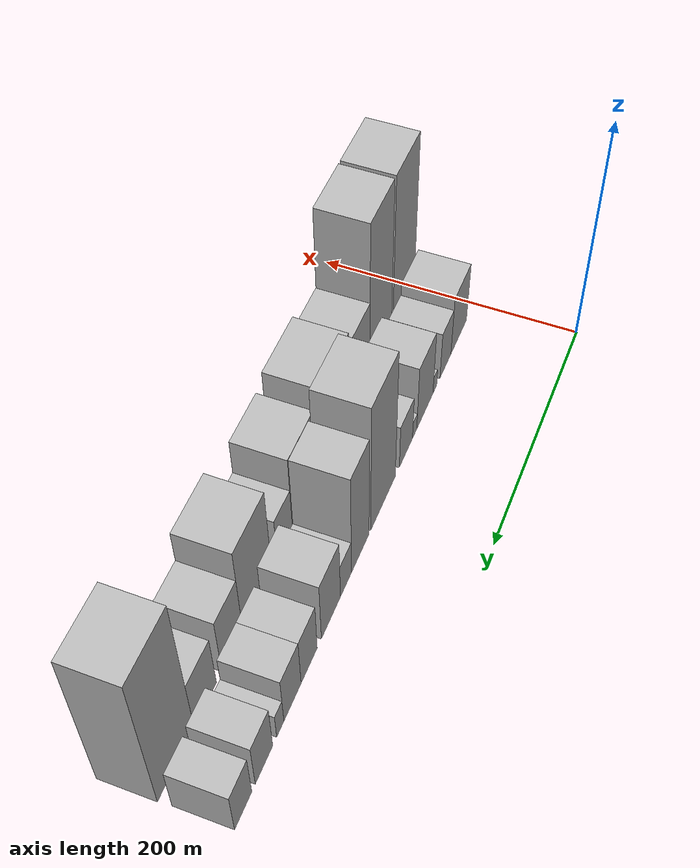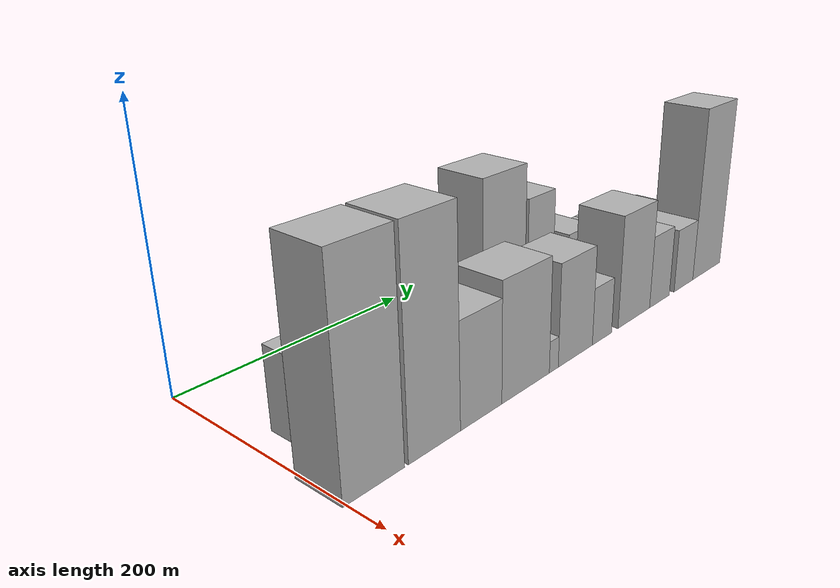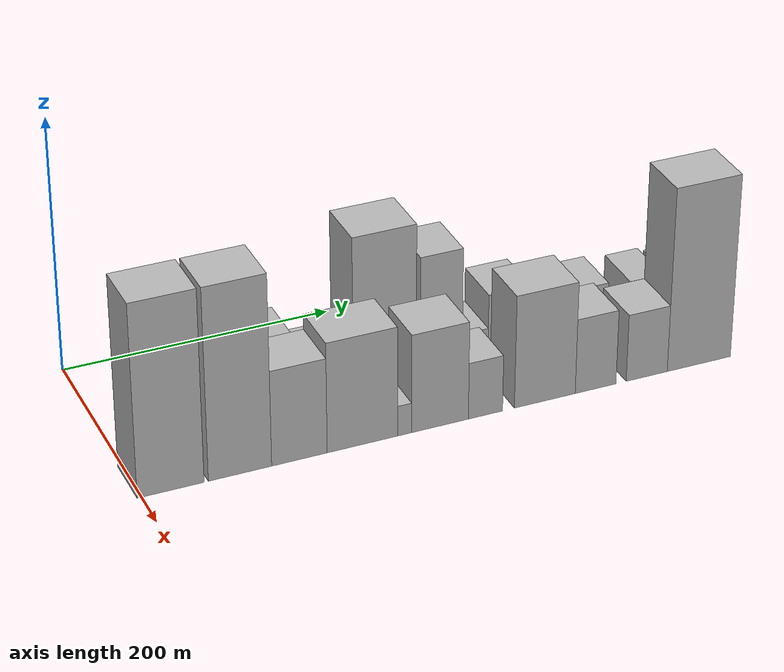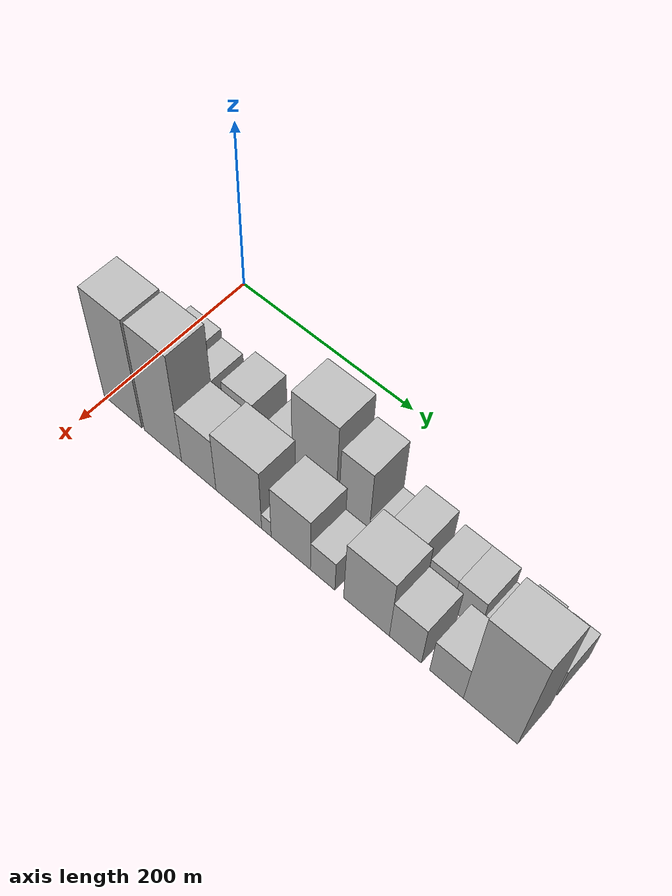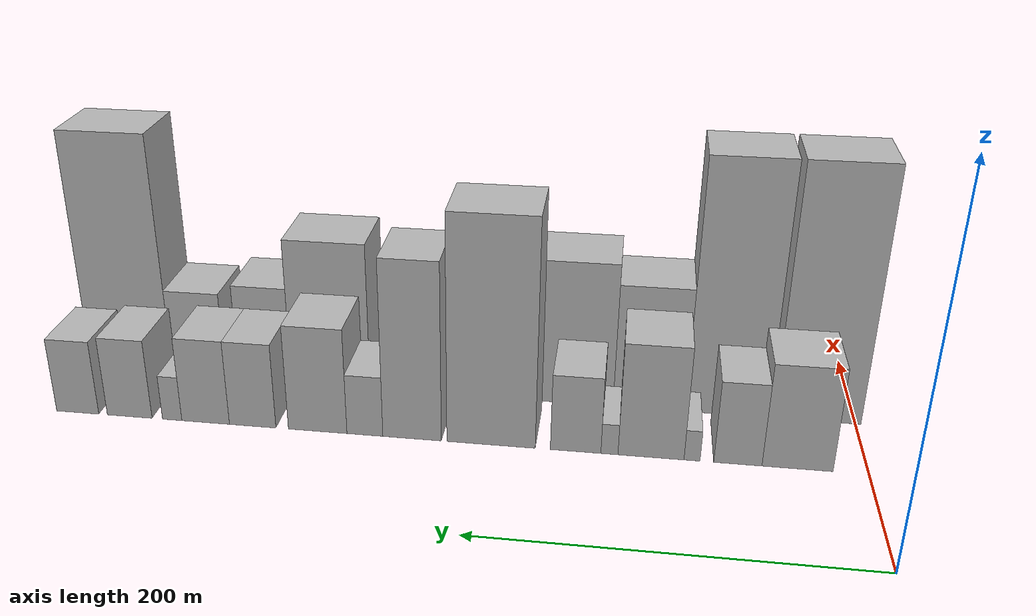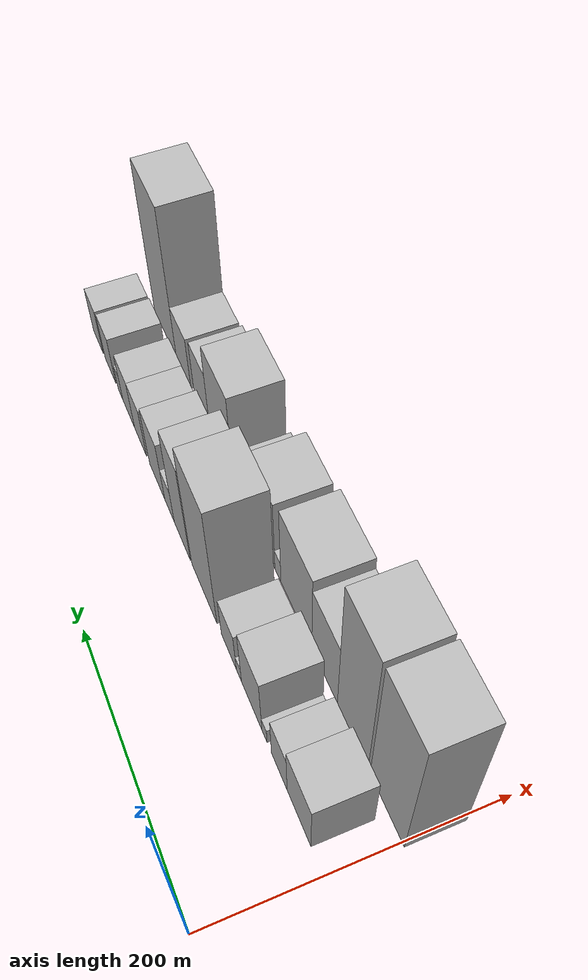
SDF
<sdf version="1.6">
 <world name="default">
  <model name="building_13">
   <static>1</static>
   <pose>100.0000 35.9638 0 0.000000 0.000000 0.000000</pose>
   <link name="link">
    <pose>0 0 30.00 0 0 0</pose>
    <collision name="collision"><geometry><box><size>40.0000 35.7683 60.0000</size></box></geometry></collision>
    <visual name="visual">
     <cast_shadows>0</cast_shadows>
     <geometry><box><size>40.0000 35.7683 60.0000</size></box></geometry>
     <material>
      <script>
       <uri>model://HANNAS_wall/materials/scripts</uri>
       <uri>model://HANNAS_wall/materials/textures</uri>
       <name>vrc/HANNAS_wall</name>
      </script>
     </material>
    </visual>
   </link>
  </model>
  <model name="building_14">
   <static>1</static>
   <pose>100.0000 66.1220 0 0.000000 0.000000 0.000000</pose>
   <link name="link">
    <pose>0 0 24.00 0 0 0</pose>
    <collision name="collision"><geometry><box><size>40.0000 24.5481 48.0000</size></box></geometry></collision>
    <visual name="visual">
     <cast_shadows>0</cast_shadows>
     <geometry><box><size>40.0000 24.5481 48.0000</size></box></geometry>
     <material>
      <script>
       <uri>model://HANNAS_wall/materials/scripts</uri>
       <uri>model://HANNAS_wall/materials/textures</uri>
       <name>vrc/HANNAS_wall</name>
      </script>
     </material>
    </visual>
   </link>
  </model>
  <model name="building_15">
   <static>1</static>
   <pose>100.0000 89.5140 0 0.000000 0.000000 0.000000</pose>
   <link name="link">
    <pose>0 0 9.00 0 0 0</pose>
    <collision name="collision"><geometry><box><size>40.0000 8.2359 18.0000</size></box></geometry></collision>
    <visual name="visual">
     <cast_shadows>0</cast_shadows>
     <geometry><box><size>40.0000 8.2359 18.0000</size></box></geometry>
     <material>
      <script>
       <uri>model://HANNAS_wall/materials/scripts</uri>
       <uri>model://HANNAS_wall/materials/textures</uri>
       <name>vrc/HANNAS_wall</name>
      </script>
     </material>
    </visual>
   </link>
  </model>
  <model name="building_16">
   <static>1</static>
   <pose>100.0000 110.7530 0 0.000000 0.000000 0.000000</pose>
   <link name="link">
    <pose>0 0 33.00 0 0 0</pose>
    <collision name="collision"><geometry><box><size>40.0000 34.2422 66.0000</size></box></geometry></collision>
    <visual name="visual">
     <cast_shadows>0</cast_shadows>
     <geometry><box><size>40.0000 34.2422 66.0000</size></box></geometry>
     <material>
      <script>
       <uri>model://HANNAS_wall/materials/scripts</uri>
       <uri>model://HANNAS_wall/materials/textures</uri>
       <name>vrc/HANNAS_wall</name>
      </script>
     </material>
    </visual>
   </link>
  </model>
  <model name="building_17">
   <static>1</static>
   <pose>100.0000 132.3384 0 0.000000 0.000000 0.000000</pose>
   <link name="link">
    <pose>0 0 9.00 0 0 0</pose>
    <collision name="collision"><geometry><box><size>40.0000 8.9285 18.0000</size></box></geometry></collision>
    <visual name="visual">
     <cast_shadows>0</cast_shadows>
     <geometry><box><size>40.0000 8.9285 18.0000</size></box></geometry>
     <material>
      <script>
       <uri>model://HANNAS_wall/materials/scripts</uri>
       <uri>model://HANNAS_wall/materials/textures</uri>
       <name>vrc/HANNAS_wall</name>
      </script>
     </material>
    </visual>
   </link>
  </model>
  <model name="building_18">
   <static>1</static>
   <pose>100.0000 150.1036 0 0.000000 0.000000 0.000000</pose>
   <link name="link">
    <pose>0 0 22.50 0 0 0</pose>
    <collision name="collision"><geometry><box><size>40.0000 26.6019 45.0000</size></box></geometry></collision>
    <visual name="visual">
     <cast_shadows>0</cast_shadows>
     <geometry><box><size>40.0000 26.6019 45.0000</size></box></geometry>
     <material>
      <script>
       <uri>model://HANNAS_wall/materials/scripts</uri>
       <uri>model://HANNAS_wall/materials/textures</uri>
       <name>vrc/HANNAS_wall</name>
      </script>
     </material>
    </visual>
   </link>
  </model>
  <model name="building_19">
   <static>1</static>
   <pose>100.0000 195.0816 0 0.000000 0.000000 0.000000</pose>
   <link name="link">
    <pose>0 0 66.00 0 0 0</pose>
    <collision name="collision"><geometry><box><size>40.0000 47.3541 132.0000</size></box></geometry></collision>
    <visual name="visual">
     <cast_shadows>0</cast_shadows>
     <geometry><box><size>40.0000 47.3541 132.0000</size></box></geometry>
     <material>
      <script>
       <uri>model://HANNAS_wall/materials/scripts</uri>
       <uri>model://HANNAS_wall/materials/textures</uri>
       <name>vrc/HANNAS_wall</name>
      </script>
     </material>
    </visual>
   </link>
  </model>
  <model name="building_20">
   <static>1</static>
   <pose>100.0000 237.6945 0 0.000000 0.000000 0.000000</pose>
   <link name="link">
    <pose>0 0 52.50 0 0 0</pose>
    <collision name="collision"><geometry><box><size>40.0000 31.8718 105.0000</size></box></geometry></collision>
    <visual name="visual">
     <cast_shadows>0</cast_shadows>
     <geometry><box><size>40.0000 31.8718 105.0000</size></box></geometry>
     <material>
      <script>
       <uri>model://HANNAS_wall/materials/scripts</uri>
       <uri>model://HANNAS_wall/materials/textures</uri>
       <name>vrc/HANNAS_wall</name>
      </script>
     </material>
    </visual>
   </link>
  </model>
  <model name="building_21">
   <static>1</static>
   <pose>100.0000 263.5030 0 0.000000 0.000000 0.000000</pose>
   <link name="link">
    <pose>0 0 18.00 0 0 0</pose>
    <collision name="collision"><geometry><box><size>40.0000 19.7451 36.0000</size></box></geometry></collision>
    <visual name="visual">
     <cast_shadows>0</cast_shadows>
     <geometry><box><size>40.0000 19.7451 36.0000</size></box></geometry>
     <material>
      <script>
       <uri>model://HANNAS_wall/materials/scripts</uri>
       <uri>model://HANNAS_wall/materials/textures</uri>
       <name>vrc/HANNAS_wall</name>
      </script>
     </material>
    </visual>
   </link>
  </model>
  <model name="building_22">
   <static>1</static>
   <pose>100.0000 289.6496 0 0.000000 0.000000 0.000000</pose>
   <link name="link">
    <pose>0 0 31.50 0 0 0</pose>
    <collision name="collision"><geometry><box><size>40.0000 32.5481 63.0000</size></box></geometry></collision>
    <visual name="visual">
     <cast_shadows>0</cast_shadows>
     <geometry><box><size>40.0000 32.5481 63.0000</size></box></geometry>
     <material>
      <script>
       <uri>model://HANNAS_wall/materials/scripts</uri>
       <uri>model://HANNAS_wall/materials/textures</uri>
       <name>vrc/HANNAS_wall</name>
      </script>
     </material>
    </visual>
   </link>
  </model>
  <model name="building_23">
   <static>1</static>
   <pose>100.0000 326.0409 0 0.000000 0.000000 0.000000</pose>
   <link name="link">
    <pose>0 0 25.50 0 0 0</pose>
    <collision name="collision"><geometry><box><size>40.0000 26.2345 51.0000</size></box></geometry></collision>
    <visual name="visual">
     <cast_shadows>0</cast_shadows>
     <geometry><box><size>40.0000 26.2345 51.0000</size></box></geometry>
     <material>
      <script>
       <uri>model://HANNAS_wall/materials/scripts</uri>
       <uri>model://HANNAS_wall/materials/textures</uri>
       <name>vrc/HANNAS_wall</name>
      </script>
     </material>
    </visual>
   </link>
  </model>
  <model name="building_24">
   <static>1</static>
   <pose>100.0000 352.7121 0 0.000000 0.000000 0.000000</pose>
   <link name="link">
    <pose>0 0 25.50 0 0 0</pose>
    <collision name="collision"><geometry><box><size>40.0000 27.1079 51.0000</size></box></geometry></collision>
    <visual name="visual">
     <cast_shadows>0</cast_shadows>
     <geometry><box><size>40.0000 27.1079 51.0000</size></box></geometry>
     <material>
      <script>
       <uri>model://HANNAS_wall/materials/scripts</uri>
       <uri>model://HANNAS_wall/materials/textures</uri>
       <name>vrc/HANNAS_wall</name>
      </script>
     </material>
    </visual>
   </link>
  </model>
  <model name="building_25">
   <static>1</static>
   <pose>100.0000 371.8195 0 0.000000 0.000000 0.000000</pose>
   <link name="link">
    <pose>0 0 13.50 0 0 0</pose>
    <collision name="collision"><geometry><box><size>40.0000 11.1069 27.0000</size></box></geometry></collision>
    <visual name="visual">
     <cast_shadows>0</cast_shadows>
     <geometry><box><size>40.0000 11.1069 27.0000</size></box></geometry>
     <material>
      <script>
       <uri>model://HANNAS_wall/materials/scripts</uri>
       <uri>model://HANNAS_wall/materials/textures</uri>
       <name>vrc/HANNAS_wall</name>
      </script>
     </material>
    </visual>
   </link>
  </model>
  <model name="building_26">
   <static>1</static>
   <pose>100.0000 396.3256 0 0.000000 0.000000 0.000000</pose>
   <link name="link">
    <pose>0 0 24.00 0 0 0</pose>
    <collision name="collision"><geometry><box><size>40.0000 25.9053 48.0000</size></box></geometry></collision>
    <visual name="visual">
     <cast_shadows>0</cast_shadows>
     <geometry><box><size>40.0000 25.9053 48.0000</size></box></geometry>
     <material>
      <script>
       <uri>model://HANNAS_wall/materials/scripts</uri>
       <uri>model://HANNAS_wall/materials/textures</uri>
       <name>vrc/HANNAS_wall</name>
      </script>
     </material>
    </visual>
   </link>
  </model>
  <model name="building_27">
   <static>1</static>
   <pose>100.0000 426.5920 0 0.000000 0.000000 0.000000</pose>
   <link name="link">
    <pose>0 0 22.50 0 0 0</pose>
    <collision name="collision"><geometry><box><size>40.0000 24.6274 45.0000</size></box></geometry></collision>
    <visual name="visual">
     <cast_shadows>0</cast_shadows>
     <geometry><box><size>40.0000 24.6274 45.0000</size></box></geometry>
     <material>
      <script>
       <uri>model://HANNAS_wall/materials/scripts</uri>
       <uri>model://HANNAS_wall/materials/textures</uri>
       <name>vrc/HANNAS_wall</name>
      </script>
     </material>
    </visual>
   </link>
  </model>
  <model name="building_40">
   <static>1</static>
   <pose>149.0000 20.6225 0 0.000000 0.000000 0.000000</pose>
   <link name="link">
    <pose>0 0 75.00 0 0 0</pose>
    <collision name="collision"><geometry><box><size>40.0000 46.8661 150.0000</size></box></geometry></collision>
    <visual name="visual">
     <cast_shadows>0</cast_shadows>
     <geometry><box><size>40.0000 46.8661 150.0000</size></box></geometry>
     <material>
      <script>
       <uri>model://HANNAS_wall/materials/scripts</uri>
       <uri>model://HANNAS_wall/materials/textures</uri>
       <name>vrc/HANNAS_wall</name>
      </script>
     </material>
    </visual>
   </link>
  </model>
  <model name="building_41">
   <static>1</static>
   <pose>149.0000 69.5752 0 0.000000 0.000000 0.000000</pose>
   <link name="link">
    <pose>0 0 75.00 0 0 0</pose>
    <collision name="collision"><geometry><box><size>40.0000 45.0393 150.0000</size></box></geometry></collision>
    <visual name="visual">
     <cast_shadows>0</cast_shadows>
     <geometry><box><size>40.0000 45.0393 150.0000</size></box></geometry>
     <material>
      <script>
       <uri>model://HANNAS_wall/materials/scripts</uri>
       <uri>model://HANNAS_wall/materials/textures</uri>
       <name>vrc/HANNAS_wall</name>
      </script>
     </material>
    </visual>
   </link>
  </model>
  <model name="building_42">
   <static>1</static>
   <pose>149.0000 112.1137 0 0.000000 0.000000 0.000000</pose>
   <link name="link">
    <pose>0 0 37.50 0 0 0</pose>
    <collision name="collision"><geometry><box><size>40.0000 40.0377 75.0000</size></box></geometry></collision>
    <visual name="visual">
     <cast_shadows>0</cast_shadows>
     <geometry><box><size>40.0000 40.0377 75.0000</size></box></geometry>
     <material>
      <script>
       <uri>model://HANNAS_wall/materials/scripts</uri>
       <uri>model://HANNAS_wall/materials/textures</uri>
       <name>vrc/HANNAS_wall</name>
      </script>
     </material>
    </visual>
   </link>
  </model>
  <model name="building_43">
   <static>1</static>
   <pose>149.0000 157.8726 0 0.000000 0.000000 0.000000</pose>
   <link name="link">
    <pose>0 0 43.50 0 0 0</pose>
    <collision name="collision"><geometry><box><size>40.0000 51.4801 87.0000</size></box></geometry></collision>
    <visual name="visual">
     <cast_shadows>0</cast_shadows>
     <geometry><box><size>40.0000 51.4801 87.0000</size></box></geometry>
     <material>
      <script>
       <uri>model://HANNAS_wall/materials/scripts</uri>
       <uri>model://HANNAS_wall/materials/textures</uri>
       <name>vrc/HANNAS_wall</name>
      </script>
     </material>
    </visual>
   </link>
  </model>
  <model name="building_44">
   <static>1</static>
   <pose>149.0000 188.8400 0 0.000000 0.000000 0.000000</pose>
   <link name="link">
    <pose>0 0 12.00 0 0 0</pose>
    <collision name="collision"><geometry><box><size>40.0000 10.4546 24.0000</size></box></geometry></collision>
    <visual name="visual">
     <cast_shadows>0</cast_shadows>
     <geometry><box><size>40.0000 10.4546 24.0000</size></box></geometry>
     <material>
      <script>
       <uri>model://HANNAS_wall/materials/scripts</uri>
       <uri>model://HANNAS_wall/materials/textures</uri>
       <name>vrc/HANNAS_wall</name>
      </script>
     </material>
    </visual>
   </link>
  </model>
  <model name="building_45">
   <static>1</static>
   <pose>149.0000 215.2452 0 0.000000 0.000000 0.000000</pose>
   <link name="link">
    <pose>0 0 39.00 0 0 0</pose>
    <collision name="collision"><geometry><box><size>40.0000 42.3559 78.0000</size></box></geometry></collision>
    <visual name="visual">
     <cast_shadows>0</cast_shadows>
     <geometry><box><size>40.0000 42.3559 78.0000</size></box></geometry>
     <material>
      <script>
       <uri>model://HANNAS_wall/materials/scripts</uri>
       <uri>model://HANNAS_wall/materials/textures</uri>
       <name>vrc/HANNAS_wall</name>
      </script>
     </material>
    </visual>
   </link>
  </model>
  <model name="building_46">
   <static>1</static>
   <pose>149.0000 249.3056 0 0.000000 0.000000 0.000000</pose>
   <link name="link">
    <pose>0 0 22.50 0 0 0</pose>
    <collision name="collision"><geometry><box><size>40.0000 25.7648 45.0000</size></box></geometry></collision>
    <visual name="visual">
     <cast_shadows>0</cast_shadows>
     <geometry><box><size>40.0000 25.7648 45.0000</size></box></geometry>
     <material>
      <script>
       <uri>model://HANNAS_wall/materials/scripts</uri>
       <uri>model://HANNAS_wall/materials/textures</uri>
       <name>vrc/HANNAS_wall</name>
      </script>
     </material>
    </visual>
   </link>
  </model>
  <model name="building_47">
   <static>1</static>
   <pose>149.0000 294.4817 0 0.000000 0.000000 0.000000</pose>
   <link name="link">
    <pose>0 0 45.00 0 0 0</pose>
    <collision name="collision"><geometry><box><size>40.0000 46.5875 90.0000</size></box></geometry></collision>
    <visual name="visual">
     <cast_shadows>0</cast_shadows>
     <geometry><box><size>40.0000 46.5875 90.0000</size></box></geometry>
     <material>
      <script>
       <uri>model://HANNAS_wall/materials/scripts</uri>
       <uri>model://HANNAS_wall/materials/textures</uri>
       <name>vrc/HANNAS_wall</name>
      </script>
     </material>
    </visual>
   </link>
  </model>
  <model name="building_48">
   <static>1</static>
   <pose>149.0000 333.5661 0 0.000000 0.000000 0.000000</pose>
   <link name="link">
    <pose>0 0 30.00 0 0 0</pose>
    <collision name="collision"><geometry><box><size>40.0000 31.5813 60.0000</size></box></geometry></collision>
    <visual name="visual">
     <cast_shadows>0</cast_shadows>
     <geometry><box><size>40.0000 31.5813 60.0000</size></box></geometry>
     <material>
      <script>
       <uri>model://HANNAS_wall/materials/scripts</uri>
       <uri>model://HANNAS_wall/materials/textures</uri>
       <name>vrc/HANNAS_wall</name>
      </script>
     </material>
    </visual>
   </link>
  </model>
  <model name="building_49">
   <static>1</static>
   <pose>149.0000 373.4619 0 0.000000 0.000000 0.000000</pose>
   <link name="link">
    <pose>0 0 27.00 0 0 0</pose>
    <collision name="collision"><geometry><box><size>40.0000 32.2104 54.0000</size></box></geometry></collision>
    <visual name="visual">
     <cast_shadows>0</cast_shadows>
     <geometry><box><size>40.0000 32.2104 54.0000</size></box></geometry>
     <material>
      <script>
       <uri>model://HANNAS_wall/materials/scripts</uri>
       <uri>model://HANNAS_wall/materials/textures</uri>
       <name>vrc/HANNAS_wall</name>
      </script>
     </material>
    </visual>
   </link>
  </model>
  <model name="building_50">
   <static>1</static>
   <pose>149.0000 414.6820 0 0.000000 0.000000 0.000000</pose>
   <link name="link">
    <pose>0 0 73.50 0 0 0</pose>
    <collision name="collision"><geometry><box><size>40.0000 50.2297 147.0000</size></box></geometry></collision>
    <visual name="visual">
     <cast_shadows>0</cast_shadows>
     <geometry><box><size>40.0000 50.2297 147.0000</size></box></geometry>
     <material>
      <script>
       <uri>model://HANNAS_wall/materials/scripts</uri>
       <uri>model://HANNAS_wall/materials/textures</uri>
       <name>vrc/HANNAS_wall</name>
      </script>
     </material>
    </visual>
   </link>
  </model>
 </world>
</sdf>
